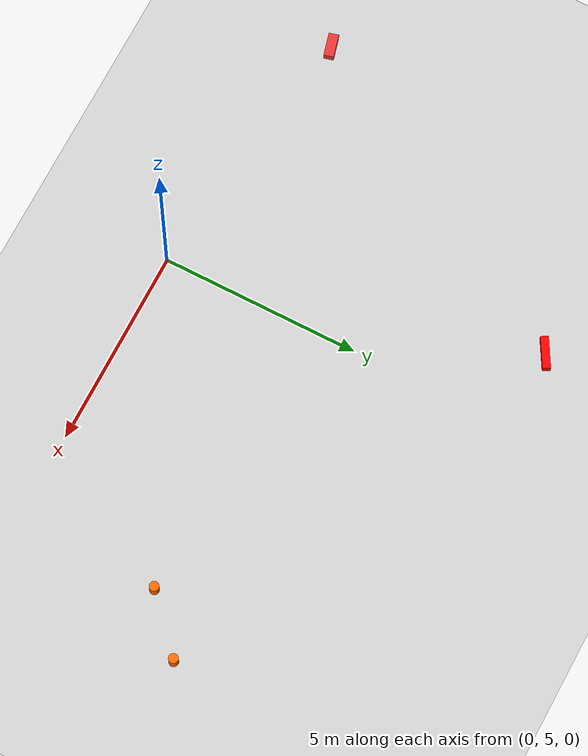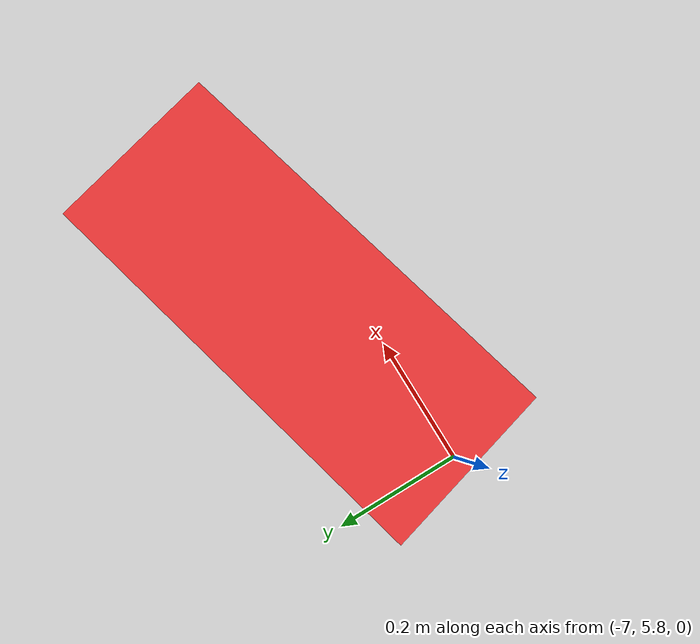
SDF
<sdf version="1.6">
 <world name="lane_circle_world">
  <plugin name="gazebo_ros" filename="libgazebo_ros_init.so">
   <ros><namespace>/</namespace><argument>--ros-args</argument></ros>
  </plugin>
  <plugin name="gazebo_ros_factory" filename="libgazebo_ros_factory.so"/>
  <plugin name="gazebo_ros_state" filename="libgazebo_ros_state.so"/>
  <scene><ambient>0.6 0.6 0.6 1</ambient><background>0.8 0.8 0.8 1</background></scene>
  <include><uri>model://sun</uri></include>
  <include><uri>model://ground_plane</uri></include>
  <model name="cone_1">
   <static>true</static>
   <pose>7.30 8.60 0.15 0 0 0</pose>
   <link name="body">
    <visual name="v">
     <geometry><cylinder><radius>0.12</radius><length>0.30</length></cylinder></geometry>
     <material><ambient>1.0 0.4 0.0 1</ambient><diffuse>1.0 0.4 0.0 1</diffuse></material>
    </visual>
    <collision name="c">
     <geometry><cylinder><radius>0.12</radius><length>0.30</length></cylinder></geometry>
    </collision>
   </link>
  </model>
  <model name="block_1">
   <static>true</static>
   <pose>-2.00 14.00 0.10 0 0 0.5236</pose>
   <link name="body">
    <visual name="v">
     <geometry><box><size>0.80 0.20 0.20</size></box></geometry>
     <material><ambient>1 0 0 1</ambient><diffuse>1 0 0 1</diffuse></material>
    </visual>
    <collision name="c"><geometry><box><size>0.80 0.20 0.20</size></box></geometry></collision>
   </link>
  </model>
  <model name="cone_2">
   <static>true</static>
   <pose>8.60 9.80 0.15 0 0 0</pose>
   <link name="body">
    <visual name="v">
     <geometry><cylinder><radius>0.12</radius><length>0.30</length></cylinder></geometry>
     <material><ambient>1.0 0.4 0.0 1</ambient><diffuse>1.0 0.4 0.0 1</diffuse></material>
    </visual>
    <collision name="c">
     <geometry><cylinder><radius>0.12</radius><length>0.30</length></cylinder></geometry>
    </collision>
   </link>
  </model>
  <model name="block_2">
   <static>true</static>
   <pose>-6.70 5.90 0.10 0 0 0.2618</pose>
   <link name="body">
    <visual name="v">
     <geometry><box><size>0.60 0.25 0.20</size></box></geometry>
     <material><ambient>0.9 0.2 0.2 1</ambient><diffuse>0.9 0.2 0.2 1</diffuse></material>
    </visual>
    <collision name="c"><geometry><box><size>0.60 0.25 0.20</size></box></geometry></collision>
   </link>
  </model>
  <physics name="default_physics" type="ode">
   <max_step_size>0.001</max_step_size>
   <real_time_update_rate>1000</real_time_update_rate>
   <real_time_factor>1.0</real_time_factor>
  </physics>
 </world>
</sdf>
